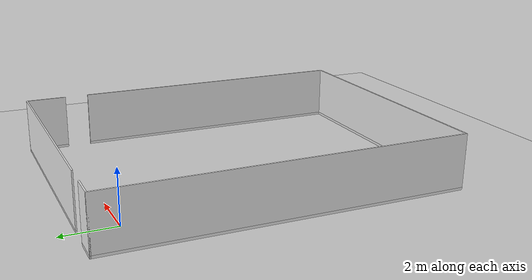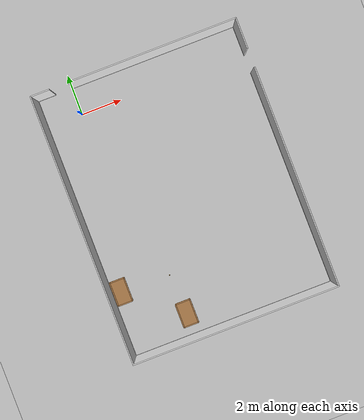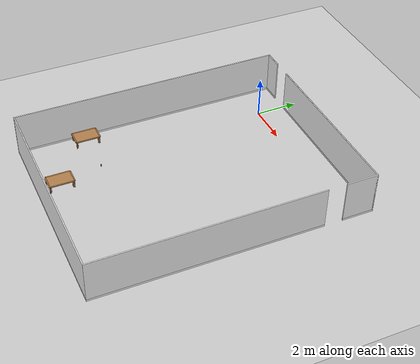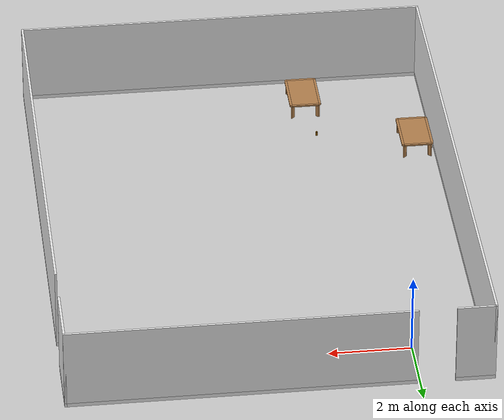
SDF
<sdf version="1.6">
 <world name="default">
  <model name="ground_plane">
   <static>1</static>
   <link name="link">
    <collision name="collision">
     <geometry><plane><normal>0 0 1</normal><size>100 100</size></plane></geometry>
     <surface><friction><ode><mu>100</mu><mu2>50</mu2></ode></friction></surface>
    </collision>
    <visual name="visual">
     <cast_shadows>0</cast_shadows>
     <geometry><plane><normal>0 0 1</normal><size>100 100</size></plane></geometry>
     <material>
      <script><uri>file://media/materials/scripts/gazebo.material</uri><name>Gazebo/Grey</name></script>
     </material>
    </visual>
   </link>
  </model>
  <model name="full_outside_wall">
   <link name="link">
    <inertial>
     <mass>50</mass>
     <inertia><ixx>1</ixx><ixy>0</ixy><ixz>0</ixz><iyy>1</iyy><iyz>0</iyz><izz>1</izz></inertia>
    </inertial>
    <visual name="x00_13y00_bottom_frame">
     <pose>5.0375 -0.0275 0.05 0 -0 0</pose>
     <geometry><box><size>10.185 0.055 0.1</size></box></geometry>
     <material>
      <script><uri>model://base_materials/color/scripts</uri><name>hsr_color/white</name></script>
     </material>
    </visual>
    <collision name="x00_13y00_collision_bottom_frame">
     <pose>5.0375 -0.0275 0.05 0 -0 0</pose>
     <geometry><box><size>10.185 0.055 0.1</size></box></geometry>
    </collision>
    <visual name="wall_x00_13y00">
     <pose>5.0375 -0.0275 1.095 0 -0 0</pose>
     <geometry><box><size>10.185 0.055 1.99</size></box></geometry>
     <material>
      <script>
       <uri>model://base_materials/wall/scripts</uri>
       <uri>model://base_materials/wall/textures</uri>
       <name>wall/white_noise</name>
      </script>
     </material>
    </visual>
    <collision name="wall_x00_13y00">
     <pose>5.0375 -0.002 1.095 0 -0 0</pose>
     <geometry><box><size>10.08 0.055 1.99</size></box></geometry>
    </collision>
    <visual name="x00y00_15_bottom_frame">
     <pose>-0.0275 6.59 0.05 0 -0 0</pose>
     <geometry><box><size>0.055 13.29 0.1</size></box></geometry>
     <material>
      <script><uri>model://base_materials/color/scripts</uri><name>hsr_color/white</name></script>
     </material>
    </visual>
    <collision name="x00y00_15_collision_bottom_frame">
     <pose>-0.0275 6.59 0.05 0 -0 0</pose>
     <geometry><box><size>0.055 13.29 0.1</size></box></geometry>
    </collision>
    <visual name="wall_x00y00_15">
     <pose>-0.0275 6.59 1.095 0 -0 0</pose>
     <geometry><box><size>0.055 13.29 1.99</size></box></geometry>
     <material>
      <script>
       <uri>model://base_materials/wall/scripts</uri>
       <uri>model://base_materials/wall/textures</uri>
       <name>wall/white_noise</name>
      </script>
     </material>
    </visual>
    <collision name="wall_x00y00_x00y15">
     <pose>-0.002 6.59 1.095 0 -0 0</pose>
     <geometry><box><size>0.002 13.29 1.99</size></box></geometry>
    </collision>
    <visual name="x13y00_12_bottom_frame">
     <pose>10.1025 5.3725 0.05 0 -0 0</pose>
     <geometry><box><size>0.055 10.855 0.1</size></box></geometry>
     <material>
      <script><uri>model://base_materials/color/scripts</uri><name>hsr_color/white</name></script>
     </material>
    </visual>
    <collision name="x13y00_12_collision_bottom_frame">
     <pose>10.1025 5.3725 0.05 0 -0 0</pose>
     <geometry><box><size>0.055 10.855 0.1</size></box></geometry>
    </collision>
    <visual name="wall_x13y00_12">
     <pose>10.1025 5.3725 1.095 0 -0 0</pose>
     <geometry><box><size>0.055 10.855 1.99</size></box></geometry>
     <material>
      <script>
       <uri>model://base_materials/wall/scripts</uri>
       <uri>model://base_materials/wall/textures</uri>
       <name>wall/white_noise</name>
      </script>
     </material>
    </visual>
    <collision name="wall_x13y00_12">
     <pose>10.1025 5.3725 1.095 0 -0 0</pose>
     <geometry><box><size>0.055 10.855 1.99</size></box></geometry>
    </collision>
    <visual name="x13y14_16_bottom_frame">
     <pose>10.1025 12.4675 0.05 0 -0 0</pose>
     <geometry><box><size>0.055 1.535 0.1</size></box></geometry>
     <material>
      <script><uri>model://base_materials/color/scripts</uri><name>hsr_color/white</name></script>
     </material>
    </visual>
    <collision name="x13y14_16_collision_bottom_frame">
     <pose>10.1025 12.4675 0.05 0 -0 0</pose>
     <geometry><box><size>0.055 1.535 0.1</size></box></geometry>
    </collision>
    <visual name="wall_x13y14_x13y16">
     <pose>10.1025 12.4675 1.095 0 -0 0</pose>
     <geometry><box><size>0.055 1.535 1.99</size></box></geometry>
     <material>
      <script>
       <uri>model://base_materials/wall/scripts</uri>
       <uri>model://base_materials/wall/textures</uri>
       <name>wall/white_noise</name>
      </script>
     </material>
    </visual>
    <collision name="wall_x13y14_x13y16">
     <pose>10.1025 12.4675 1.095 0 -0 0</pose>
     <geometry><box><size>0.055 1.535 1.99</size></box></geometry>
    </collision>
    <visual name="x00_01y16_bottom_frame">
     <pose>0.4225 13.2075 0.05 0 -0 0</pose>
     <geometry><box><size>0.955 0.055 0.1</size></box></geometry>
     <material>
      <script><uri>model://base_materials/color/scripts</uri><name>hsr_color/white</name></script>
     </material>
    </visual>
    <collision name="x00_01y16_collision_bottom_frame">
     <pose>0.4225 13.2075 0.05 0 -0 0</pose>
     <geometry><box><size>0.955 0.055 0.1</size></box></geometry>
    </collision>
    <visual name="wall_x00_01y16">
     <pose>0.4225 13.2075 1.095 0 -0 0</pose>
     <geometry><box><size>0.955 0.055 1.99</size></box></geometry>
     <material>
      <script>
       <uri>model://base_materials/wall/scripts</uri>
       <uri>model://base_materials/wall/textures</uri>
       <name>wall/white_noise</name>
      </script>
     </material>
    </visual>
    <collision name="wall_x00_x01y16">
     <pose>0.4225 13.2075 1.095 0 -0 0</pose>
     <geometry><box><size>0.955 0.055 1.99</size></box></geometry>
    </collision>
    <visual name="x03_13y16_bottom_frame">
     <pose>5.965 13.2075 0.05 0 -0 0</pose>
     <geometry><box><size>8.33 0.05 0.1</size></box></geometry>
     <material>
      <script><uri>model://base_materials/color/scripts</uri><name>hsr_color/white</name></script>
     </material>
    </visual>
    <collision name="x03_13y16_collision_bottom_frame">
     <pose>5.965 13.2075 0.05 0 -0 0</pose>
     <geometry><box><size>8.33 0.05 0.1</size></box></geometry>
    </collision>
    <visual name="wall_x03_13y16">
     <pose>5.965 13.2075 1.095 0 -0 0</pose>
     <geometry><box><size>8.33 0.055 1.99</size></box></geometry>
     <material>
      <script>
       <uri>model://base_materials/wall/scripts</uri>
       <uri>model://base_materials/wall/textures</uri>
       <name>wall/white_noise</name>
      </script>
     </material>
    </visual>
    <collision name="wall_x03_13y16">
     <pose>5.965 13.2075 1.095 0 -0 0</pose>
     <geometry><box><size>8.33 0.055 1.99</size></box></geometry>
    </collision>
    <velocity_decay><linear>0</linear><angular>0</angular></velocity_decay>
   </link>
   <static>1</static>
   <pose>-1.74055 -11.8334 0 0 -0 0</pose>
  </model>
  <model name="kitchen_lowtable">
   <link name="link">
    <inertial>
     <mass>10</mass>
     <inertia><ixx>1</ixx><ixy>0</ixy><ixz>0</ixz><iyy>1</iyy><iyz>0</iyz><izz>1</izz></inertia>
    </inertial>
    <visual name="center_board">
     <pose>0 0 0.38 0 -0 0</pose>
     <geometry><box><size>0.68 1.13 0.04</size></box></geometry>
     <material>
      <script><uri>model://base_materials/wood/scripts/wood.material</uri><name>base_materials/wood</name></script>
     </material>
    </visual>
    <collision name="collision_center_board">
     <pose>0 0 0.38 0 -0 0</pose>
     <geometry><box><size>0.68 1.13 0.04</size></box></geometry>
    </collision>
    <visual name="front_board">
     <pose>0.37 0 0.38 0 -0 0</pose>
     <geometry><box><size>0.06 1.13 0.04</size></box></geometry>
     <material>
      <script><uri>model://base_materials/wood/scripts/wood.material</uri><name>base_materials/wood</name></script>
     </material>
    </visual>
    <collision name="collision_front_board">
     <pose>0.37 0 0.38 0 -0 0</pose>
     <geometry><box><size>0.06 1.13 0.04</size></box></geometry>
    </collision>
    <visual name="back_board">
     <pose>-0.37 0 0.38 0 -0 0</pose>
     <geometry><box><size>0.06 1.13 0.04</size></box></geometry>
     <material>
      <script><uri>model://base_materials/wood/scripts/wood.material</uri><name>base_materials/wood</name></script>
     </material>
    </visual>
    <collision name="collision_back_board">
     <pose>-0.37 0 0.38 0 -0 0</pose>
     <geometry><box><size>0.06 1.13 0.04</size></box></geometry>
    </collision>
    <visual name="right_board">
     <pose>0 0.595 0.38 0 -0 0</pose>
     <geometry><box><size>0.68 0.06 0.04</size></box></geometry>
     <material>
      <script><uri>model://base_materials/wood/scripts/wood.material</uri><name>base_materials/wood</name></script>
     </material>
    </visual>
    <collision name="collision_right_board">
     <pose>0 0.595 0.38 0 -0 0</pose>
     <geometry><box><size>0.68 0.06 0.04</size></box></geometry>
    </collision>
    <visual name="left_board">
     <pose>0 -0.595 0.38 0 -0 0</pose>
     <geometry><box><size>0.68 0.06 0.04</size></box></geometry>
     <material>
      <script><uri>model://base_materials/wood/scripts/wood.material</uri><name>base_materials/wood</name></script>
     </material>
    </visual>
    <collision name="collision_left_board">
     <pose>0 -0.595 0.38 0 -0 0</pose>
     <geometry><box><size>0.68 0.06 0.04</size></box></geometry>
    </collision>
    <visual name="front_right_corner_board">
     <pose>0.34 0.565 0.38 0 -0 0</pose>
     <geometry><cylinder><radius>0.06</radius><length>0.039</length></cylinder></geometry>
     <material>
      <script><uri>model://base_materials/wood/scripts/wood.material</uri><name>base_materials/wood</name></script>
     </material>
    </visual>
    <collision name="collision_front_right_corner_board">
     <pose>0.34 0.565 0.38 0 -0 0</pose>
     <geometry><cylinder><radius>0.06</radius><length>0.039</length></cylinder></geometry>
    </collision>
    <visual name="front_left_corner_board">
     <pose>0.34 -0.565 0.38 0 -0 0</pose>
     <geometry><cylinder><radius>0.06</radius><length>0.039</length></cylinder></geometry>
     <material>
      <script><uri>model://base_materials/wood/scripts/wood.material</uri><name>base_materials/wood</name></script>
     </material>
    </visual>
    <collision name="collision_front_left_corner_board">
     <pose>0.34 -0.565 0.38 0 -0 0</pose>
     <geometry><cylinder><radius>0.06</radius><length>0.039</length></cylinder></geometry>
    </collision>
    <visual name="front_back_right_corner_board">
     <pose>-0.34 0.565 0.38 0 -0 0</pose>
     <geometry><cylinder><radius>0.06</radius><length>0.039</length></cylinder></geometry>
     <material>
      <script><uri>model://base_materials/wood/scripts/wood.material</uri><name>base_materials/wood</name></script>
     </material>
    </visual>
    <collision name="collision_back_right_corner_board">
     <pose>-0.34 0.565 0.38 0 -0 0</pose>
     <geometry><cylinder><radius>0.06</radius><length>0.039</length></cylinder></geometry>
    </collision>
    <visual name="front_back_left_corner_board">
     <pose>-0.34 -0.565 0.38 0 -0 0</pose>
     <geometry><cylinder><radius>0.06</radius><length>0.039</length></cylinder></geometry>
     <material>
      <script><uri>model://base_materials/wood/scripts/wood.material</uri><name>base_materials/wood</name></script>
     </material>
    </visual>
    <collision name="collision_back_left_corner_board">
     <pose>-0.34 -0.565 0.38 0 -0 0</pose>
     <geometry><cylinder><radius>0.06</radius><length>0.039</length></cylinder></geometry>
    </collision>
    <visual name="front_left_corner_frame1">
     <pose>0.345858 -0.57086 0.18 0 -0 0</pose>
     <geometry><cylinder><radius>0.02</radius><length>0.36</length></cylinder></geometry>
     <material>
      <script><uri>model://base_materials/wood/scripts/wood.material</uri><name>base_materials/wood</name></script>
     </material>
    </visual>
    <collision name="collision_front_left_corner_frame1">
     <pose>0.345858 -0.57086 0.18 0 -0 0</pose>
     <geometry><cylinder><radius>0.02</radius><length>0.36</length></cylinder></geometry>
    </collision>
    <visual name="front_left_corner_frame2">
     <pose>0.317574 -0.54257 0.18 0 -0 0.7854</pose>
     <geometry><box><size>0.04 0.08 0.36</size></box></geometry>
     <material>
      <script><uri>model://base_materials/wood/scripts/wood.material</uri><name>base_materials/wood</name></script>
     </material>
    </visual>
    <collision name="collision_front_left_corner_frame2">
     <pose>0.317574 -0.54257 0.18 0 -0 0.7854</pose>
     <geometry><box><size>0.04 0.08 0.36</size></box></geometry>
    </collision>
    <visual name="front_left_corner_frame3">
     <pose>0.289289 -0.51429 0.18 0 -0 0</pose>
     <geometry><cylinder><radius>0.02</radius><length>0.36</length></cylinder></geometry>
     <material>
      <script><uri>model://base_materials/wood/scripts/wood.material</uri><name>base_materials/wood</name></script>
     </material>
    </visual>
    <collision name="collision_front_left_corner_frame3">
     <pose>0.289289 -0.51429 0.18 0 -0 0</pose>
     <geometry><cylinder><radius>0.02</radius><length>0.36</length></cylinder></geometry>
    </collision>
    <visual name="front_right_corner_frame1">
     <pose>0.345858 0.57086 0.18 0 -0 0</pose>
     <geometry><cylinder><radius>0.02</radius><length>0.36</length></cylinder></geometry>
     <material>
      <script><uri>model://base_materials/wood/scripts/wood.material</uri><name>base_materials/wood</name></script>
     </material>
    </visual>
    <collision name="collision_front_right_corner_frame1">
     <pose>0.345858 0.57086 0.18 0 -0 0</pose>
     <geometry><cylinder><radius>0.02</radius><length>0.36</length></cylinder></geometry>
    </collision>
    <visual name="front_right_corner_frame2">
     <pose>0.317574 0.54257 0.18 0 0 -0.7854</pose>
     <geometry><box><size>0.04 0.08 0.36</size></box></geometry>
     <material>
      <script><uri>model://base_materials/wood/scripts/wood.material</uri><name>base_materials/wood</name></script>
     </material>
    </visual>
    <collision name="collision_front_right_corner_frame2">
     <pose>0.317574 0.54257 0.18 0 0 -0.7854</pose>
     <geometry><box><size>0.04 0.08 0.36</size></box></geometry>
    </collision>
    <visual name="front_right_corner_frame3">
     <pose>0.289289 0.51429 0.18 0 -0 0</pose>
     <geometry><cylinder><radius>0.02</radius><length>0.36</length></cylinder></geometry>
     <material>
      <script><uri>model://base_materials/wood/scripts/wood.material</uri><name>base_materials/wood</name></script>
     </material>
    </visual>
    <collision name="collision_front_right_corner_frame3">
     <pose>0.289289 0.51429 0.18 0 -0 0</pose>
     <geometry><cylinder><radius>0.02</radius><length>0.36</length></cylinder></geometry>
    </collision>
    <visual name="back_left_corner_frame1">
     <pose>-0.345858 -0.57086 0.18 0 -0 0</pose>
     <geometry><cylinder><radius>0.02</radius><length>0.36</length></cylinder></geometry>
     <material>
      <script><uri>model://base_materials/wood/scripts/wood.material</uri><name>base_materials/wood</name></script>
     </material>
    </visual>
    <collision name="collision_back_left_corner_frame1">
     <pose>-0.345858 -0.57086 0.18 0 -0 0</pose>
     <geometry><cylinder><radius>0.02</radius><length>0.36</length></cylinder></geometry>
    </collision>
    <visual name="back_left_corner_frame2">
     <pose>-0.317574 -0.54257 0.18 0 0 -0.7854</pose>
     <geometry><box><size>0.04 0.08 0.36</size></box></geometry>
     <material>
      <script><uri>model://base_materials/wood/scripts/wood.material</uri><name>base_materials/wood</name></script>
     </material>
    </visual>
    <collision name="collision_back_left_corner_frame2">
     <pose>-0.317574 -0.54257 0.18 0 0 -0.7854</pose>
     <geometry><box><size>0.04 0.08 0.36</size></box></geometry>
    </collision>
    <visual name="back_left_corner_frame3">
     <pose>-0.289289 -0.51429 0.18 0 -0 0</pose>
     <geometry><cylinder><radius>0.02</radius><length>0.36</length></cylinder></geometry>
     <material>
      <script><uri>model://base_materials/wood/scripts/wood.material</uri><name>base_materials/wood</name></script>
     </material>
    </visual>
    <collision name="collision_back_left_corner_frame3">
     <pose>-0.289289 -0.51429 0.18 0 -0 0</pose>
     <geometry><cylinder><radius>0.02</radius><length>0.36</length></cylinder></geometry>
    </collision>
    <visual name="back_right_corner_frame1">
     <pose>-0.345858 0.57086 0.18 0 -0 0</pose>
     <geometry><cylinder><radius>0.02</radius><length>0.36</length></cylinder></geometry>
     <material>
      <script><uri>model://base_materials/wood/scripts/wood.material</uri><name>base_materials/wood</name></script>
     </material>
    </visual>
    <collision name="collision_back_right_corner_frame1">
     <pose>-0.345858 0.57086 0.18 0 -0 0</pose>
     <geometry><cylinder><radius>0.02</radius><length>0.36</length></cylinder></geometry>
    </collision>
    <visual name="back_right_corner_frame2">
     <pose>-0.317574 0.54257 0.18 0 -0 0.7854</pose>
     <geometry><box><size>0.04 0.08 0.36</size></box></geometry>
     <material>
      <script><uri>model://base_materials/wood/scripts/wood.material</uri><name>base_materials/wood</name></script>
     </material>
    </visual>
    <collision name="collision_back_right_corner_frame2">
     <pose>-0.317574 0.54257 0.18 0 -0 0.7854</pose>
     <geometry><box><size>0.04 0.08 0.36</size></box></geometry>
    </collision>
    <visual name="back_right_corner_frame3">
     <pose>-0.289289 0.51429 0.18 0 -0 0</pose>
     <geometry><cylinder><radius>0.02</radius><length>0.36</length></cylinder></geometry>
     <material>
      <script><uri>model://base_materials/wood/scripts/wood.material</uri><name>base_materials/wood</name></script>
     </material>
    </visual>
    <collision name="collision_back_right_corner_frame3">
     <pose>-0.289289 0.51429 0.18 0 -0 0</pose>
     <geometry><cylinder><radius>0.02</radius><length>0.36</length></cylinder></geometry>
    </collision>
    <velocity_decay><linear>0</linear><angular>0</angular></velocity_decay>
   </link>
   <static>1</static>
   <pose>-1.29071 -8.66423 0 0 -0 0</pose>
  </model>
  <model name="kitchen_lowtable_clone_2">
   <link name="link">
    <inertial>
     <mass>10</mass>
     <inertia><ixx>1</ixx><ixy>0</ixy><ixz>0</ixz><iyy>1</iyy><iyz>0</iyz><izz>1</izz></inertia>
    </inertial>
    <visual name="center_board">
     <pose>0 0 0.38 0 -0 0</pose>
     <geometry><box><size>0.68 1.13 0.04</size></box></geometry>
     <material>
      <script><uri>model://base_materials/wood/scripts/wood.material</uri><name>base_materials/wood</name></script>
     </material>
    </visual>
    <collision name="collision_center_board">
     <pose>0 0 0.38 0 -0 0</pose>
     <geometry><box><size>0.68 1.13 0.04</size></box></geometry>
    </collision>
    <visual name="front_board">
     <pose>0.37 0 0.38 0 -0 0</pose>
     <geometry><box><size>0.06 1.13 0.04</size></box></geometry>
     <material>
      <script><uri>model://base_materials/wood/scripts/wood.material</uri><name>base_materials/wood</name></script>
     </material>
    </visual>
    <collision name="collision_front_board">
     <pose>0.37 0 0.38 0 -0 0</pose>
     <geometry><box><size>0.06 1.13 0.04</size></box></geometry>
    </collision>
    <visual name="back_board">
     <pose>-0.37 0 0.38 0 -0 0</pose>
     <geometry><box><size>0.06 1.13 0.04</size></box></geometry>
     <material>
      <script><uri>model://base_materials/wood/scripts/wood.material</uri><name>base_materials/wood</name></script>
     </material>
    </visual>
    <collision name="collision_back_board">
     <pose>-0.37 0 0.38 0 -0 0</pose>
     <geometry><box><size>0.06 1.13 0.04</size></box></geometry>
    </collision>
    <visual name="right_board">
     <pose>0 0.595 0.38 0 -0 0</pose>
     <geometry><box><size>0.68 0.06 0.04</size></box></geometry>
     <material>
      <script><uri>model://base_materials/wood/scripts/wood.material</uri><name>base_materials/wood</name></script>
     </material>
    </visual>
    <collision name="collision_right_board">
     <pose>0 0.595 0.38 0 -0 0</pose>
     <geometry><box><size>0.68 0.06 0.04</size></box></geometry>
    </collision>
    <visual name="left_board">
     <pose>0 -0.595 0.38 0 -0 0</pose>
     <geometry><box><size>0.68 0.06 0.04</size></box></geometry>
     <material>
      <script><uri>model://base_materials/wood/scripts/wood.material</uri><name>base_materials/wood</name></script>
     </material>
    </visual>
    <collision name="collision_left_board">
     <pose>0 -0.595 0.38 0 -0 0</pose>
     <geometry><box><size>0.68 0.06 0.04</size></box></geometry>
    </collision>
    <visual name="front_right_corner_board">
     <pose>0.34 0.565 0.38 0 -0 0</pose>
     <geometry><cylinder><radius>0.06</radius><length>0.039</length></cylinder></geometry>
     <material>
      <script><uri>model://base_materials/wood/scripts/wood.material</uri><name>base_materials/wood</name></script>
     </material>
    </visual>
    <collision name="collision_front_right_corner_board">
     <pose>0.34 0.565 0.38 0 -0 0</pose>
     <geometry><cylinder><radius>0.06</radius><length>0.039</length></cylinder></geometry>
    </collision>
    <visual name="front_left_corner_board">
     <pose>0.34 -0.565 0.38 0 -0 0</pose>
     <geometry><cylinder><radius>0.06</radius><length>0.039</length></cylinder></geometry>
     <material>
      <script><uri>model://base_materials/wood/scripts/wood.material</uri><name>base_materials/wood</name></script>
     </material>
    </visual>
    <collision name="collision_front_left_corner_board">
     <pose>0.34 -0.565 0.38 0 -0 0</pose>
     <geometry><cylinder><radius>0.06</radius><length>0.039</length></cylinder></geometry>
    </collision>
    <visual name="front_back_right_corner_board">
     <pose>-0.34 0.565 0.38 0 -0 0</pose>
     <geometry><cylinder><radius>0.06</radius><length>0.039</length></cylinder></geometry>
     <material>
      <script><uri>model://base_materials/wood/scripts/wood.material</uri><name>base_materials/wood</name></script>
     </material>
    </visual>
    <collision name="collision_back_right_corner_board">
     <pose>-0.34 0.565 0.38 0 -0 0</pose>
     <geometry><cylinder><radius>0.06</radius><length>0.039</length></cylinder></geometry>
    </collision>
    <visual name="front_back_left_corner_board">
     <pose>-0.34 -0.565 0.38 0 -0 0</pose>
     <geometry><cylinder><radius>0.06</radius><length>0.039</length></cylinder></geometry>
     <material>
      <script><uri>model://base_materials/wood/scripts/wood.material</uri><name>base_materials/wood</name></script>
     </material>
    </visual>
    <collision name="collision_back_left_corner_board">
     <pose>-0.34 -0.565 0.38 0 -0 0</pose>
     <geometry><cylinder><radius>0.06</radius><length>0.039</length></cylinder></geometry>
    </collision>
    <visual name="front_left_corner_frame1">
     <pose>0.345858 -0.57086 0.18 0 -0 0</pose>
     <geometry><cylinder><radius>0.02</radius><length>0.36</length></cylinder></geometry>
     <material>
      <script><uri>model://base_materials/wood/scripts/wood.material</uri><name>base_materials/wood</name></script>
     </material>
    </visual>
    <collision name="collision_front_left_corner_frame1">
     <pose>0.345858 -0.57086 0.18 0 -0 0</pose>
     <geometry><cylinder><radius>0.02</radius><length>0.36</length></cylinder></geometry>
    </collision>
    <visual name="front_left_corner_frame2">
     <pose>0.317574 -0.54257 0.18 0 -0 0.7854</pose>
     <geometry><box><size>0.04 0.08 0.36</size></box></geometry>
     <material>
      <script><uri>model://base_materials/wood/scripts/wood.material</uri><name>base_materials/wood</name></script>
     </material>
    </visual>
    <collision name="collision_front_left_corner_frame2">
     <pose>0.317574 -0.54257 0.18 0 -0 0.7854</pose>
     <geometry><box><size>0.04 0.08 0.36</size></box></geometry>
    </collision>
    <visual name="front_left_corner_frame3">
     <pose>0.289289 -0.51429 0.18 0 -0 0</pose>
     <geometry><cylinder><radius>0.02</radius><length>0.36</length></cylinder></geometry>
     <material>
      <script><uri>model://base_materials/wood/scripts/wood.material</uri><name>base_materials/wood</name></script>
     </material>
    </visual>
    <collision name="collision_front_left_corner_frame3">
     <pose>0.289289 -0.51429 0.18 0 -0 0</pose>
     <geometry><cylinder><radius>0.02</radius><length>0.36</length></cylinder></geometry>
    </collision>
    <visual name="front_right_corner_frame1">
     <pose>0.345858 0.57086 0.18 0 -0 0</pose>
     <geometry><cylinder><radius>0.02</radius><length>0.36</length></cylinder></geometry>
     <material>
      <script><uri>model://base_materials/wood/scripts/wood.material</uri><name>base_materials/wood</name></script>
     </material>
    </visual>
    <collision name="collision_front_right_corner_frame1">
     <pose>0.345858 0.57086 0.18 0 -0 0</pose>
     <geometry><cylinder><radius>0.02</radius><length>0.36</length></cylinder></geometry>
    </collision>
    <visual name="front_right_corner_frame2">
     <pose>0.317574 0.54257 0.18 0 0 -0.7854</pose>
     <geometry><box><size>0.04 0.08 0.36</size></box></geometry>
     <material>
      <script><uri>model://base_materials/wood/scripts/wood.material</uri><name>base_materials/wood</name></script>
     </material>
    </visual>
    <collision name="collision_front_right_corner_frame2">
     <pose>0.317574 0.54257 0.18 0 0 -0.7854</pose>
     <geometry><box><size>0.04 0.08 0.36</size></box></geometry>
    </collision>
    <visual name="front_right_corner_frame3">
     <pose>0.289289 0.51429 0.18 0 -0 0</pose>
     <geometry><cylinder><radius>0.02</radius><length>0.36</length></cylinder></geometry>
     <material>
      <script><uri>model://base_materials/wood/scripts/wood.material</uri><name>base_materials/wood</name></script>
     </material>
    </visual>
    <collision name="collision_front_right_corner_frame3">
     <pose>0.289289 0.51429 0.18 0 -0 0</pose>
     <geometry><cylinder><radius>0.02</radius><length>0.36</length></cylinder></geometry>
    </collision>
    <visual name="back_left_corner_frame1">
     <pose>-0.345858 -0.57086 0.18 0 -0 0</pose>
     <geometry><cylinder><radius>0.02</radius><length>0.36</length></cylinder></geometry>
     <material>
      <script><uri>model://base_materials/wood/scripts/wood.material</uri><name>base_materials/wood</name></script>
     </material>
    </visual>
    <collision name="collision_back_left_corner_frame1">
     <pose>-0.345858 -0.57086 0.18 0 -0 0</pose>
     <geometry><cylinder><radius>0.02</radius><length>0.36</length></cylinder></geometry>
    </collision>
    <visual name="back_left_corner_frame2">
     <pose>-0.317574 -0.54257 0.18 0 0 -0.7854</pose>
     <geometry><box><size>0.04 0.08 0.36</size></box></geometry>
     <material>
      <script><uri>model://base_materials/wood/scripts/wood.material</uri><name>base_materials/wood</name></script>
     </material>
    </visual>
    <collision name="collision_back_left_corner_frame2">
     <pose>-0.317574 -0.54257 0.18 0 0 -0.7854</pose>
     <geometry><box><size>0.04 0.08 0.36</size></box></geometry>
    </collision>
    <visual name="back_left_corner_frame3">
     <pose>-0.289289 -0.51429 0.18 0 -0 0</pose>
     <geometry><cylinder><radius>0.02</radius><length>0.36</length></cylinder></geometry>
     <material>
      <script><uri>model://base_materials/wood/scripts/wood.material</uri><name>base_materials/wood</name></script>
     </material>
    </visual>
    <collision name="collision_back_left_corner_frame3">
     <pose>-0.289289 -0.51429 0.18 0 -0 0</pose>
     <geometry><cylinder><radius>0.02</radius><length>0.36</length></cylinder></geometry>
    </collision>
    <visual name="back_right_corner_frame1">
     <pose>-0.345858 0.57086 0.18 0 -0 0</pose>
     <geometry><cylinder><radius>0.02</radius><length>0.36</length></cylinder></geometry>
     <material>
      <script><uri>model://base_materials/wood/scripts/wood.material</uri><name>base_materials/wood</name></script>
     </material>
    </visual>
    <collision name="collision_back_right_corner_frame1">
     <pose>-0.345858 0.57086 0.18 0 -0 0</pose>
     <geometry><cylinder><radius>0.02</radius><length>0.36</length></cylinder></geometry>
    </collision>
    <visual name="back_right_corner_frame2">
     <pose>-0.317574 0.54257 0.18 0 -0 0.7854</pose>
     <geometry><box><size>0.04 0.08 0.36</size></box></geometry>
     <material>
      <script><uri>model://base_materials/wood/scripts/wood.material</uri><name>base_materials/wood</name></script>
     </material>
    </visual>
    <collision name="collision_back_right_corner_frame2">
     <pose>-0.317574 0.54257 0.18 0 -0 0.7854</pose>
     <geometry><box><size>0.04 0.08 0.36</size></box></geometry>
    </collision>
    <visual name="back_right_corner_frame3">
     <pose>-0.289289 0.51429 0.18 0 -0 0</pose>
     <geometry><cylinder><radius>0.02</radius><length>0.36</length></cylinder></geometry>
     <material>
      <script><uri>model://base_materials/wood/scripts/wood.material</uri><name>base_materials/wood</name></script>
     </material>
    </visual>
    <collision name="collision_back_right_corner_frame3">
     <pose>-0.289289 0.51429 0.18 0 -0 0</pose>
     <geometry><cylinder><radius>0.02</radius><length>0.36</length></cylinder></geometry>
    </collision>
    <velocity_decay><linear>0</linear><angular>0</angular></velocity_decay>
   </link>
   <static>1</static>
   <pose>1.29938 -10.7614 0 0 -0 0</pose>
  </model>
  <model name="bottle_clone_2_clone_2_clone_0_clone_0">
   <link name="link">
    <inertial>
     <mass>0.05</mass>
     <inertia><ixx>0.00058</ixx><ixy>0</ixy><ixz>0</ixz><iyy>0.00058</iyy><iyz>0</iyz><izz>0.00016</izz></inertia>
    </inertial>
    <visual name="top">
     <pose>0 0 0.0555 0 -0 0</pose>
     <geometry><cylinder><radius>0.019</radius><length>0.016</length></cylinder></geometry>
     <material>
      <ambient>1 0.647 0 1</ambient>
      <diffuse>0.5 0.3235 0 1</diffuse>
      <specular>0.1 0.1 0.1 1</specular>
      <emissive>0 0 0 0</emissive>
     </material>
    </visual>
    <collision name="collision_top">
     <pose>0 0 0.0555 0 -0 0</pose>
     <geometry><cylinder><radius>0.019</radius><length>0.016</length></cylinder></geometry>
     <surface>
      <bounce><restitution_coefficient>0.2</restitution_coefficient><threshold>0</threshold></bounce>
      <contact><ode><kp>10000</kp><max_vel>10</max_vel></ode></contact>
     </surface>
    </collision>
    <visual name="bottom">
     <geometry><cylinder><radius>0.0245</radius><length>0.095</length></cylinder></geometry>
     <material>
      <ambient>1 0.7 0.3 1</ambient>
      <diffuse>0.5 0.3235 0 1</diffuse>
      <specular>0.1 0.1 0.1 1</specular>
      <emissive>0 0 0 0</emissive>
     </material>
    </visual>
    <collision name="collision_bottom">
     <geometry><cylinder><radius>0.0245</radius><length>0.095</length></cylinder></geometry>
     <surface>
      <bounce><restitution_coefficient>0.2</restitution_coefficient><threshold>0</threshold></bounce>
      <contact><ode><kp>100000</kp><max_vel>10</max_vel></ode></contact>
     </surface>
    </collision>
    <velocity_decay><linear>0</linear><angular>0</angular></velocity_decay>
    <visual name="marker_4000">
     <pose>0.0245 0 0 0 1.57 3.141</pose>
     <geometry><box><size>0.045 0.045 0.0001</size></box></geometry>
     <material>
      <script>
       <uri>model://marker/4000/scripts</uri>
       <uri>model://marker/4000/textures</uri>
       <name>Marker/4000</name>
      </script>
     </material>
    </visual>
   </link>
   <static>0</static>
   <pose>1.19258 -8.73927 0.4475 7e-06 -6e-06 3.13829</pose>
  </model>
 </world>
</sdf>
